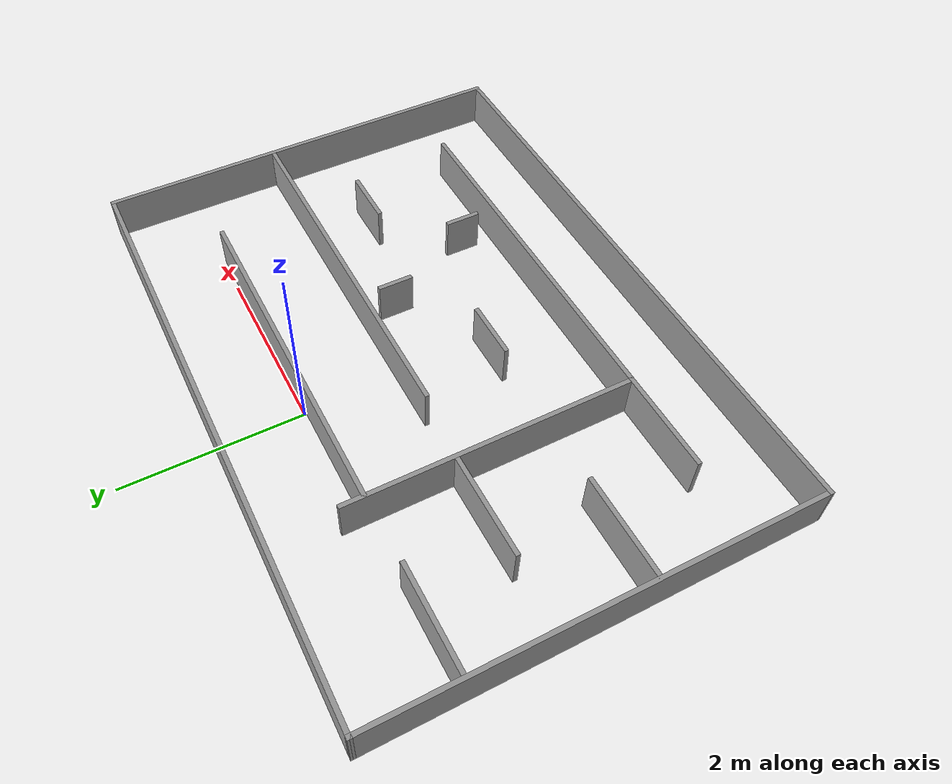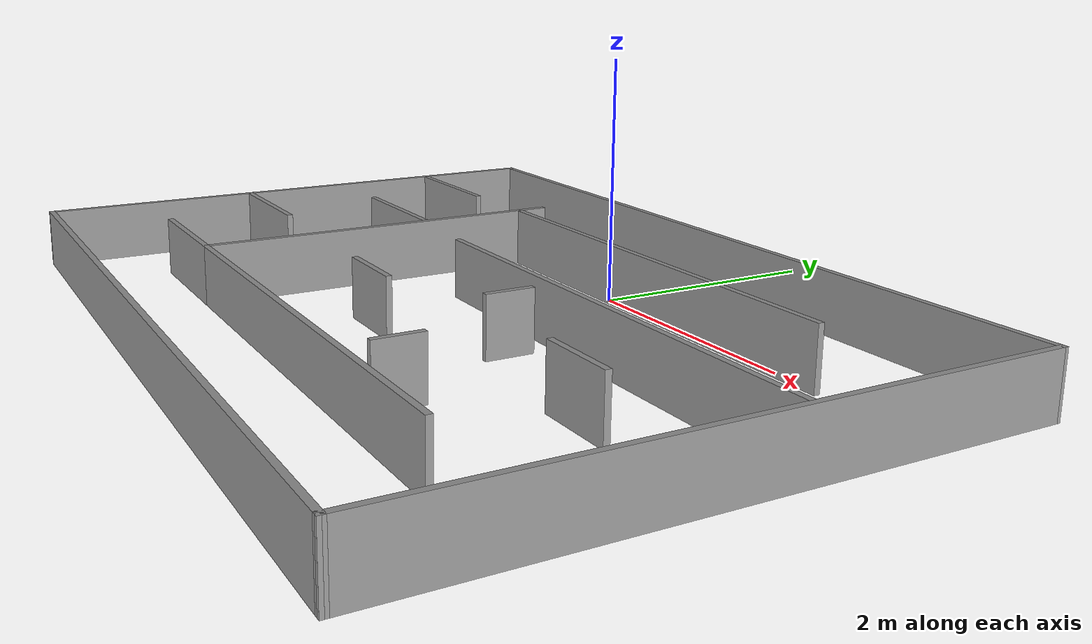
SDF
<?xml version='1.0'?>
<sdf version='1.6'>
  <model name='navigation_test_world'>
    <pose frame=''>0.0665 -1.47447 0 0 -0 0</pose>
    <link name='Wall_1'>
      <collision name='Wall_1_Collision'>
        <geometry>
          <box>
            <size>6.88507 0.05 0.5</size>
          </box>
        </geometry>
        <pose frame=''>0 0 0.25 0 -0 0</pose>
      </collision>
      <visual name='Wall_1_Visual'>
        <pose frame=''>0 0 0.25 0 -0 0</pose>
        <geometry>
          <box>
            <size>6.88507 0.05 0.5</size>
          </box>
        </geometry>
        <material>
          <script>
            <uri>file://media/materials/scripts/gazebo.material</uri>
            <name>Gazebo/Grey</name>
          </script>
          <ambient>1 1 1 1</ambient>
        </material>
        <meta>
          <layer>0</layer>
        </meta>
      </visual>
      <pose frame=''>0 -2.43153 0 0 0 -0.004389</pose>
    </link>
    <link name='Wall_11'>
      <collision name='Wall_11_Collision'>
        <geometry>
          <box>
            <size>3.25 0.05 0.5</size>
          </box>
        </geometry>
        <pose frame=''>0 0 0.25 0 -0 0</pose>
      </collision>
      <visual name='Wall_11_Visual'>
        <pose frame=''>0 0 0.25 0 -0 0</pose>
        <geometry>
          <box>
            <size>3.25 0.05 0.5</size>
          </box>
        </geometry>
        <material>
          <script>
            <uri>file://media/materials/scripts/gazebo.material</uri>
            <name>Gazebo/Grey</name>
          </script>
          <ambient>1 1 1 1</ambient>
        </material>
        <meta>
          <layer>0</layer>
        </meta>
      </visual>
      <pose frame=''>-1.5005 0.073473 0 0 0 -1.5708</pose>
    </link>
    <link name='Wall_13'>
      <collision name='Wall_13_Collision'>
        <geometry>
          <box>
            <size>1.15 0.05 0.5</size>
          </box>
        </geometry>
        <pose frame=''>0 0 0.25 0 -0 0</pose>
      </collision>
      <visual name='Wall_13_Visual'>
        <pose frame=''>0 0 0.25 0 -0 0</pose>
        <geometry>
          <box>
            <size>1.15 0.05 0.5</size>
          </box>
        </geometry>
        <material>
          <script>
            <uri>file://media/materials/scripts/gazebo.material</uri>
            <name>Gazebo/Grey</name>
          </script>
          <ambient>1 1 1 1</ambient>
        </material>
        <meta>
          <layer>0</layer>
        </meta>
      </visual>
      <pose frame=''>-2.09568 0.476473 0 0 -0 0</pose>
    </link>
    <link name='Wall_15'>
      <collision name='Wall_15_Collision'>
        <geometry>
          <box>
            <size>1.15 0.05 0.5</size>
          </box>
        </geometry>
        <pose frame=''>0 0 0.25 0 -0 0</pose>
      </collision>
      <visual name='Wall_15_Visual'>
        <pose frame=''>0 0 0.25 0 -0 0</pose>
        <geometry>
          <box>
            <size>1.15 0.05 0.5</size>
          </box>
        </geometry>
        <material>
          <script>
            <uri>file://media/materials/scripts/gazebo.material</uri>
            <name>Gazebo/Grey</name>
          </script>
          <ambient>1 1 1 1</ambient>
        </material>
        <meta>
          <layer>0</layer>
        </meta>
      </visual>
      <pose frame=''>-2.8515 -0.523527 0 0 -0 0</pose>
    </link>
    <link name='Wall_17'>
      <collision name='Wall_17_Collision'>
        <geometry>
          <box>
            <size>1.15037 0.05 0.5</size>
          </box>
        </geometry>
        <pose frame=''>0 0 0.25 0 -0 0</pose>
      </collision>
      <visual name='Wall_17_Visual'>
        <pose frame=''>0 0 0.25 0 -0 0</pose>
        <geometry>
          <box>
            <size>1.15037 0.05 0.5</size>
          </box>
        </geometry>
        <material>
          <script>
            <uri>file://media/materials/scripts/gazebo.material</uri>
            <name>Gazebo/Grey</name>
          </script>
          <ambient>1 1 1 1</ambient>
        </material>
        <meta>
          <layer>0</layer>
        </meta>
      </visual>
      <pose frame=''>-2.0505 -1.52653 0 0 -0 3.14159</pose>
    </link>
    <link name='Wall_2'>
      <collision name='Wall_2_Collision'>
        <geometry>
          <box>
            <size>4.898 0.05 0.5</size>
          </box>
        </geometry>
        <pose frame=''>0 0 0.25 0 -0 0</pose>
      </collision>
      <visual name='Wall_2_Visual'>
        <pose frame=''>0 0 0.25 0 -0 0</pose>
        <geometry>
          <box>
            <size>4.898 0.05 0.5</size>
          </box>
        </geometry>
        <material>
          <script>
            <uri>file://media/materials/scripts/gazebo.material</uri>
            <name>Gazebo/Grey</name>
          </script>
          <ambient>1 1 1 1</ambient>
        </material>
        <meta>
          <layer>0</layer>
        </meta>
      </visual>
      <pose frame=''>3.4175 -0.022527 0 0 -0 1.5708</pose>
    </link>
    <link name='Wall_20'>
      <collision name='Wall_20_Collision'>
        <geometry>
          <box>
            <size>4.15 0.05 0.5</size>
          </box>
        </geometry>
        <pose frame=''>0 0 0.25 0 -0 0</pose>
      </collision>
      <visual name='Wall_20_Visual'>
        <pose frame=''>0 0 0.25 0 -0 0</pose>
        <geometry>
          <box>
            <size>4.15 0.05 0.5</size>
          </box>
        </geometry>
        <material>
          <script>
            <uri>file://media/materials/scripts/gazebo.material</uri>
            <name>Gazebo/Grey</name>
          </script>
          <ambient>1 1 1 1</ambient>
        </material>
        <meta>
          <layer>0</layer>
        </meta>
      </visual>
      <pose frame=''>0.5495 -1.52653 0 0 -0 0</pose>
    </link>
    <link name='Wall_22'>
      <collision name='Wall_22_Collision'>
        <geometry>
          <box>
            <size>4.15 0.05 0.5</size>
          </box>
        </geometry>
        <pose frame=''>0 0 0.25 0 -0 0</pose>
      </collision>
      <visual name='Wall_22_Visual'>
        <pose frame=''>0 0 0.25 0 -0 0</pose>
        <geometry>
          <box>
            <size>4.15 0.05 0.5</size>
          </box>
        </geometry>
        <material>
          <script>
            <uri>file://media/materials/scripts/gazebo.material</uri>
            <name>Gazebo/Grey</name>
          </script>
          <ambient>1 1 1 1</ambient>
        </material>
        <meta>
          <layer>0</layer>
        </meta>
      </visual>
      <pose frame=''>1.32028 0.401777 0 0 -0 3.14159</pose>
    </link>
    <link name='Wall_24'>
      <collision name='Wall_24_Collision'>
        <geometry>
          <box>
            <size>0.4 0.05 0.5</size>
          </box>
        </geometry>
        <pose frame=''>0 0 0.25 0 -0 0</pose>
      </collision>
      <visual name='Wall_24_Visual'>
        <pose frame=''>0 0 0.25 0 -0 0</pose>
        <geometry>
          <box>
            <size>0.4 0.05 0.5</size>
          </box>
        </geometry>
        <material>
          <script>
            <uri>file://media/materials/scripts/gazebo.material</uri>
            <name>Gazebo/Grey</name>
          </script>
          <ambient>1 1 1 1</ambient>
        </material>
        <meta>
          <layer>0</layer>
        </meta>
      </visual>
      <pose frame=''>0.778466 0.014771 0 0 0 -1.5708</pose>
    </link>
    <link name='Wall_26'>
      <collision name='Wall_26_Collision'>
        <geometry>
          <box>
            <size>0.65 0.05 0.5</size>
          </box>
        </geometry>
        <pose frame=''>0 0 0.25 0 -0 0</pose>
      </collision>
      <visual name='Wall_26_Visual'>
        <pose frame=''>0 0 0.25 0 -0 0</pose>
        <geometry>
          <box>
            <size>0.65 0.05 0.5</size>
          </box>
        </geometry>
        <material>
          <script>
            <uri>file://media/materials/scripts/gazebo.material</uri>
            <name>Gazebo/Grey</name>
          </script>
          <ambient>1 1 1 1</ambient>
        </material>
        <meta>
          <layer>0</layer>
        </meta>
      </visual>
      <pose frame=''>-0.284693 -0.588176 0 0 -0 0</pose>
    </link>
    <link name='Wall_28'>
      <collision name='Wall_28_Collision'>
        <geometry>
          <box>
            <size>0.4 0.05 0.5</size>
          </box>
        </geometry>
        <pose frame=''>0 0 0.25 0 -0 0</pose>
      </collision>
      <visual name='Wall_28_Visual'>
        <pose frame=''>0 0 0.25 0 -0 0</pose>
        <geometry>
          <box>
            <size>0.4 0.05 0.5</size>
          </box>
        </geometry>
        <material>
          <script>
            <uri>file://media/materials/scripts/gazebo.material</uri>
            <name>Gazebo/Grey</name>
          </script>
          <ambient>1 1 1 1</ambient>
        </material>
        <meta>
          <layer>0</layer>
        </meta>
      </visual>
      <pose frame=''>1.3338 -1.11247 0 0 -0 1.5708</pose>
    </link>
    <link name='Wall_3'>
      <collision name='Wall_3_Collision'>
        <geometry>
          <box>
            <size>6.88515 0.05 0.5</size>
          </box>
        </geometry>
        <pose frame=''>0 0 0.25 0 -0 0</pose>
      </collision>
      <visual name='Wall_3_Visual'>
        <pose frame=''>0 0 0.25 0 -0 0</pose>
        <geometry>
          <box>
            <size>6.88515 0.05 0.5</size>
          </box>
        </geometry>
        <material>
          <script>
            <uri>file://media/materials/scripts/gazebo.material</uri>
            <name>Gazebo/Grey</name>
          </script>
          <ambient>1 1 1 1</ambient>
        </material>
        <meta>
          <layer>0</layer>
        </meta>
      </visual>
      <pose frame=''>0 2.42397 0 0 -0 3.13501</pose>
    </link>
    <link name='Wall_30'>
      <collision name='Wall_30_Collision'>
        <geometry>
          <box>
            <size>0.65 0.05 0.5</size>
          </box>
        </geometry>
        <pose frame=''>0 0 0.25 0 -0 0</pose>
      </collision>
      <visual name='Wall_30_Visual'>
        <pose frame=''>0 0 0.25 0 -0 0</pose>
        <geometry>
          <box>
            <size>0.65 0.05 0.5</size>
          </box>
        </geometry>
        <material>
          <script>
            <uri>file://media/materials/scripts/gazebo.material</uri>
            <name>Gazebo/Grey</name>
          </script>
          <ambient>1 1 1 1</ambient>
        </material>
        <meta>
          <layer>0</layer>
        </meta>
      </visual>
      <pose frame=''>2.15838 -0.299423 0 0 -0 0</pose>
    </link>
    <link name='Wall_32'>
      <collision name='Wall_32_Collision'>
        <geometry>
          <box>
            <size>3.90027 0.05 0.5</size>
          </box>
        </geometry>
        <pose frame=''>0 0 0.25 0 -0 0</pose>
      </collision>
      <visual name='Wall_32_Visual'>
        <pose frame=''>0 0 0.25 0 -0 0</pose>
        <geometry>
          <box>
            <size>3.90027 0.05 0.5</size>
          </box>
        </geometry>
        <material>
          <script>
            <uri>file://media/materials/scripts/gazebo.material</uri>
            <name>Gazebo/Grey</name>
          </script>
          <ambient>1 1 1 1</ambient>
        </material>
        <meta>
          <layer>0</layer>
        </meta>
      </visual>
      <pose frame=''>0.4355 1.43247 0 0 -0 0</pose>
    </link>
    <link name='Wall_4'>
      <collision name='Wall_4_Collision'>
        <geometry>
          <box>
            <size>4.913 0.05 0.5</size>
          </box>
        </geometry>
        <pose frame=''>0 0 0.25 0 -0 0</pose>
      </collision>
      <visual name='Wall_4_Visual'>
        <pose frame=''>0 0 0.25 0 -0 0</pose>
        <geometry>
          <box>
            <size>4.913 0.05 0.5</size>
          </box>
        </geometry>
        <material>
          <script>
            <uri>file://media/materials/scripts/gazebo.material</uri>
            <name>Gazebo/Grey</name>
          </script>
          <ambient>1 1 1 1</ambient>
        </material>
        <meta>
          <layer>0</layer>
        </meta>
      </visual>
      <pose frame=''>-3.4175 0.014973 0 0 0 -1.5708</pose>
    </link>
    <link name='Wall_9'>
      <collision name='Wall_9_Collision'>
        <geometry>
          <box>
            <size>1.15 0.05 0.499</size>
          </box>
        </geometry>
        <pose frame=''>0 0 0.2495 0 -0 0</pose>
      </collision>
      <visual name='Wall_9_Visual'>
        <pose frame=''>0 0 0.2495 0 -0 0</pose>
        <geometry>
          <box>
            <size>1.15 0.05 0.499</size>
          </box>
        </geometry>
        <material>
          <script>
            <uri>file://media/materials/scripts/gazebo.material</uri>
            <name>Gazebo/Grey</name>
          </script>
          <ambient>1 1 1 1</ambient>
        </material>
        <meta>
          <layer>0</layer>
        </meta>
      </visual>
      <pose frame=''>-2.82195 1.40975 0 0 -0 0</pose>
    </link>
    <static>1</static>
  </model>
</sdf>
